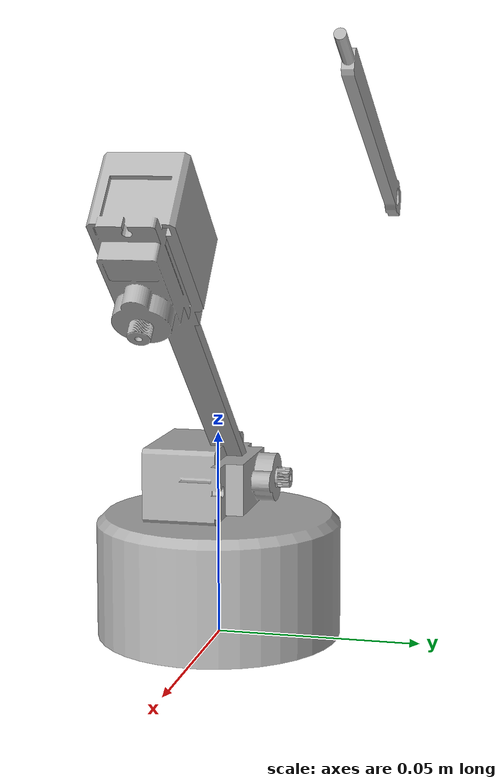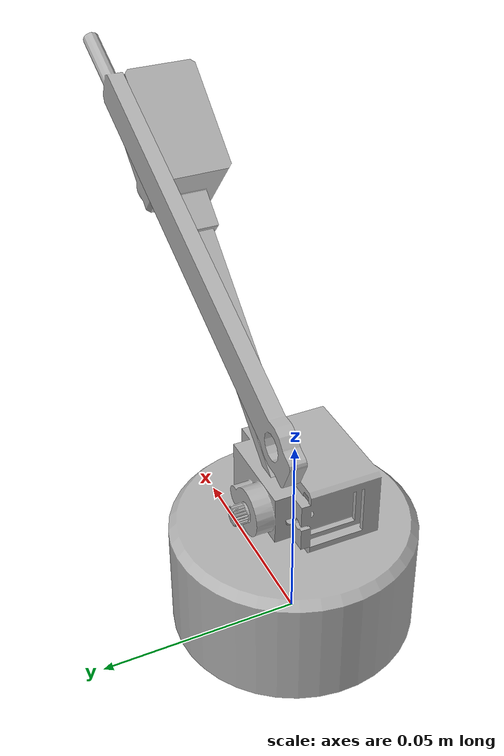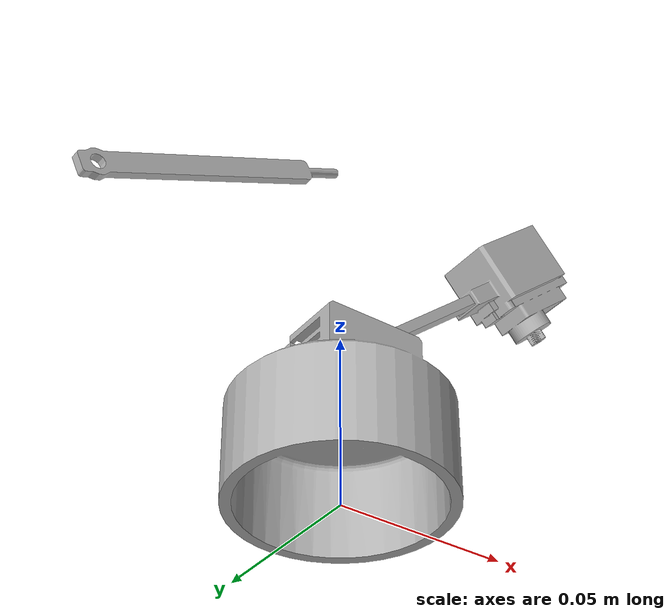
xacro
<?xml version="1.0" encoding="utf-8"?>

<robot name="r2b_description" xmlns:xacro="http://www.ros.org/wiki/xacro">

  <link name='world'/>

  <link
    name="base_link">
    <inertial>
      <origin
        xyz="0.00073068 0.025055 0.0010739"
        rpy="0 0 0" />
      <mass
        value="0.038209" />
      <inertia
        ixx="1.2081E-05"
        ixy="-4.3058E-09"
        ixz="-1.4586E-08"
        iyy="1.8632E-05"
        iyz="2.1753E-08"
        izz="1.2226E-05" />
    </inertial>
    <visual>
      <origin
        xyz="0 0 0"
        rpy="0 0 0" />
      <geometry>
        <mesh
          filename="package://r2b_description/meshes/base_link.STL" />
      </geometry>
      <material
        name="">
        <color
          rgba="0.69804 0.69804 0.69804 1" />
      </material>
    </visual>
    <collision>
      <origin
        xyz="0 0 0"
        rpy="0 0 0" />
      <geometry>
        <mesh
          filename="package://r2b_description/meshes/base_link.STL" />
      </geometry>
    </collision>
  </link>

  <joint name="fixed" type="fixed">
		<origin xyz="0.0 0.0 0.0" rpy="0.0 0.0 0.0"/>
		<parent link="world"/>
		<child link="base_link"/>
	</joint>

  <link
    name="link_1">
    <inertial>
      <origin
        xyz="6.0082E-05 -0.012068 -0.084882"
        rpy="0 0 0" />
      <mass
        value="0.016989" />
      <inertia
        ixx="2.8178E-06"
        ixy="-8.2697E-10"
        ixz="2.9601E-09"
        iyy="2.5263E-06"
        iyz="5.7316E-08"
        izz="9.8098E-07" />
    </inertial>
    <visual>
      <origin
        xyz="0 0 0"
        rpy="0 0 0" />
      <geometry>
        <mesh
          filename="package://r2b_description/meshes/link_1.STL" />
      </geometry>
      <material
        name="">
        <color
          rgba="0.69804 0.69804 0.69804 1" />
      </material>
    </visual>
    <collision>
      <origin
        xyz="0 0 0"
        rpy="0 0 0" />
      <geometry>
        <mesh
          filename="package://r2b_description/meshes/link_1.STL" />
      </geometry>
    </collision>
  </link>

  <joint
    name="link_1_jnt"
    type="revolute">
    <origin
      xyz="-0.00328 0.00325 0.03878"
      rpy="3.1416 -0.70536 0" />
    <parent
      link="base_link" />
    <child
      link="link_1" />
    <axis
      xyz="0 1 0" />
    <limit
      lower="-0.86544"
      upper="2.2762"
      effort="0"
      velocity="0" />
  </joint>

  <link
    name="link_2">
    <inertial>
      <origin
        xyz="-0.039321 8.052E-11 -0.0015"
        rpy="0 0 0" />
      <mass
        value="0.0020676" />
      <inertia
        ixx="1.0065E-08"
        ixy="3.2355E-15"
        ixz="6.5643E-16"
        iyy="1.3673E-06"
        iyz="1.8552E-15"
        izz="1.3743E-06" />
    </inertial>
    <visual>
      <origin
        xyz="0 0 0"
        rpy="0 0 0" />
      <geometry>
        <mesh
          filename="package://r2b_description/meshes/link_2.STL" />
      </geometry>
      <material
        name="">
        <color
          rgba="0.69804 0.69804 0.69804 1" />
      </material>
    </visual>
    <collision>
      <origin
        xyz="0 0 0"
        rpy="0 0 0" />
      <geometry>
        <mesh
          filename="package://r2b_description/meshes/link_2.STL" />
      </geometry>
    </collision>
  </link>

  <joint
    name="link_2_jnt"
    type="revolute">
    <origin
      xyz="-8.5788E-05 -0.02875 -0.087773"
      rpy="-1.5708 -0.26503 0" />
    <parent
      link="link_1" />
    <child
      link="link_2" />
    <axis
      xyz="0 0 1" />
    <limit
      lower="-1.8358"
      upper="1.3058"
      effort="0"
      velocity="0" />
  </joint>

  <xacro:include filename="$(find r2b_description)/urdf/r2b_gazebo.xacro"/>
  <xacro:revolute_controllers/>

</robot>
